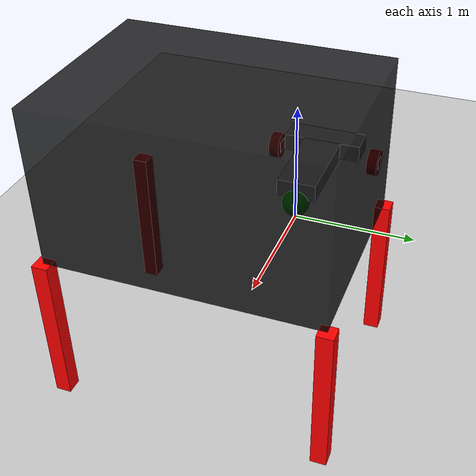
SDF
<?xml version="1.0" ?>
<sdf version="1.6">
  <world name="default">
    <shadows>false</shadows>
    <physics name="default_physics" type="ignored">
      <max_step_size>0.001</max_step_size>
      <real_time_factor>1.0</real_time_factor>
    </physics>
    <plugin
      filename="gz-sim-physics-system"
      name="gz::sim::systems::Physics">
    </plugin>
    <light type="directional" name="sun">
      <cast_shadows>false</cast_shadows>
      <pose>0 0 10 0 0 0</pose>
      <diffuse>1 1 1 1</diffuse>
      <specular>0.5 0.5 0.5 1</specular>
      <attenuation>
        <range>1000</range>
        <constant>0.9</constant>
        <linear>0.01</linear>
        <quadratic>0.001</quadratic>
      </attenuation>
      <direction>-0.5 0.1 -0.9</direction>
    </light>
    <gravity>0 0 -9.81</gravity>

    <plugin
      filename="gz-sim-sensors-system"
      name="gz::sim::systems::Sensors">
      <render_engine>ogre2</render_engine>
    </plugin>
    <plugin
      filename="gz-sim-scene-broadcaster-system"
      name="gz::sim::systems::SceneBroadcaster">
    </plugin>

    <gui fullscreen="0">

      <!-- 3D scene -->
      <plugin filename="MinimalScene" name="3D View">
        <gz-gui>
          <title>3D View</title>
          <property type="bool" key="showTitleBar">false</property>
          <property type="string" key="state">docked</property>
        </gz-gui>

        <engine>ogre2</engine>
        <scene>scene</scene>
        <ambient_light>0.4 0.4 0.4</ambient_light>
        <background_color>0.8 0.8 0.8</background_color>
        <camera_pose>-6 0 6 0 0.5 0</camera_pose>
      </plugin>

      <!-- Plugins that add functionality to the scene -->
      <plugin filename="EntityContextMenuPlugin" name="Entity context menu">
        <gz-gui>
          <property key="state" type="string">floating</property>
          <property key="width" type="double">5</property>
          <property key="height" type="double">5</property>
          <property key="showTitleBar" type="bool">false</property>
        </gz-gui>
      </plugin>
      <plugin filename="GzSceneManager" name="Scene Manager">
        <gz-gui>
          <property key="resizable" type="bool">false</property>
          <property key="width" type="double">5</property>
          <property key="height" type="double">5</property>
          <property key="state" type="string">floating</property>
          <property key="showTitleBar" type="bool">false</property>
        </gz-gui>
      </plugin>
      <plugin filename="InteractiveViewControl" name="Interactive view control">
        <gz-gui>
          <property key="resizable" type="bool">false</property>
          <property key="width" type="double">5</property>
          <property key="height" type="double">5</property>
          <property key="state" type="string">floating</property>
          <property key="showTitleBar" type="bool">false</property>
        </gz-gui>
      </plugin>
      <plugin filename="CameraTracking" name="Camera Tracking">
        <gz-gui>
          <property key="resizable" type="bool">false</property>
          <property key="width" type="double">5</property>
          <property key="height" type="double">5</property>
          <property key="state" type="string">floating</property>
          <property key="showTitleBar" type="bool">false</property>
        </gz-gui>
      </plugin>
      <!-- World control -->
      <plugin filename="WorldControl" name="World control">
        <gz-gui>
          <title>World control</title>
          <property type="bool" key="showTitleBar">false</property>
          <property type="bool" key="resizable">false</property>
          <property type="double" key="height">72</property>
          <property type="double" key="z">1</property>

          <property type="string" key="state">floating</property>
          <anchors target="3D View">
            <line own="left" target="left"/>
            <line own="bottom" target="bottom"/>
          </anchors>
        </gz-gui>

        <play_pause>true</play_pause>
        <step>true</step>
        <start_paused>true</start_paused>
        <use_event>true</use_event>

      </plugin>
      <!-- World statistics -->
      <plugin filename="WorldStats" name="World stats">
        <gz-gui>
          <title>World stats</title>
          <property type="bool" key="showTitleBar">false</property>
          <property type="bool" key="resizable">false</property>
          <property type="double" key="height">110</property>
          <property type="double" key="width">290</property>
          <property type="double" key="z">1</property>

          <property type="string" key="state">floating</property>
          <anchors target="3D View">
            <line own="right" target="right"/>
            <line own="bottom" target="bottom"/>
          </anchors>
        </gz-gui>

        <sim_time>true</sim_time>
        <real_time>true</real_time>
        <real_time_factor>true</real_time_factor>
        <iterations>true</iterations>
      </plugin>

      <!-- Inspector -->
      <plugin filename="ComponentInspector" name="Component inspector">
        <gz-gui>
          <property type="string" key="state">docked</property>
        </gz-gui>
      </plugin>

      <!-- Entity tree -->
      <plugin filename="EntityTree" name="Entity tree">
        <gz-gui>
          <property type="string" key="state">docked</property>
        </gz-gui>
      </plugin>
    </gui>

    <model name="ground_plane">
        <static>true</static>
        <link name="link">
            <collision name="collision">
            <geometry>
                <plane>
                <normal>0 0 1</normal>
                </plane>
            </geometry>
            <surface>
                <friction>
                <ode>
                    <mu>100</mu>
                    <mu2>50</mu2>
                </ode>
                </friction>
                <torsional>
                  <coefficient>0.0</coefficient>
                  <use_patch_radius>false</use_patch_radius>
                  <surface_radius>0.0</surface_radius>
                </torsional>
            </surface>
            </collision>
            <visual name="visual">
            <geometry>
                <plane>
                <normal>0 0 1</normal>
                <size>100 100</size>
                </plane>
            </geometry>
            <material>
                <ambient>0.8 0.8 0.8 1</ambient>
                <diffuse>0.8 0.8 0.8 1</diffuse>
                <specular>0.8 0.8 0.8 1</specular>
            </material>
            </visual>
        </link>
    </model>

    <!-- 장애물 - 박스 -->
    <model name='obstacle1'>
      <static>true</static>
      <pose>1.05 0.92 0.5 0 0 0</pose>
      <link name="box_link">
        <inertial>
          <inertia>
            <ixx>1</ixx>
            <ixy>0</ixy>
            <ixz>0</ixz>
            <iyy>1</iyy>
            <iyz>0</iyz>
            <izz>1</izz>
          </inertia>
          <mass>10</mass>
        </inertial>
        <collision name="box_collision">
          <geometry>
            <box>
              <size>0.1 0.1 1</size>
            </box>
          </geometry>
        </collision>
        <visual name='box_visual'>
          <geometry>
            <box>
              <size>0.1 0.1 1</size>
            </box>
          </geometry>
          <material>
            <ambient>1 0 0 1</ambient>
            <diffuse>1 0 0 1</diffuse>
            <specular>1 0 0 1</specular>
          </material>
        </visual>
      </link>
    </model>
    <model name='obstacle2'>
      <static>true</static>
      <pose>2.31 0.92 0.5 0 0 0</pose>
      <link name="box_link">
        <inertial>
          <inertia>
            <ixx>1</ixx>
            <ixy>0</ixy>
            <ixz>0</ixz>
            <iyy>1</iyy>
            <iyz>0</iyz>
            <izz>1</izz>
          </inertia>
          <mass>10</mass>
        </inertial>
        <collision name="box_collision">
          <geometry>
            <box>
              <size>0.1 0.1 1</size>
            </box>
          </geometry>
        </collision>
        <visual name='box_visual'>
          <geometry>
            <box>
              <size>0.1 0.1 1</size>
            </box>
          </geometry>
          <material>
            <ambient>1 0 0 1</ambient>
            <diffuse>1 0 0 1</diffuse>
            <specular>1 0 0 1</specular>
          </material>
        </visual>
      </link>
    </model>
    <model name='obstacle3'>
      <static>true</static>
      <pose>2.31 -0.79 0.5 0 0 0</pose>
      <link name="box_link">
        <inertial>
          <inertia>
            <ixx>1</ixx>
            <ixy>0</ixy>
            <ixz>0</ixz>
            <iyy>1</iyy>
            <iyz>0</iyz>
            <izz>1</izz>
          </inertia>
          <mass>10</mass>
        </inertial>
        <collision name="box_collision">
          <geometry>
            <box>
              <size>0.1 0.1 1</size>
            </box>
          </geometry>
        </collision>
        <visual name='box_visual'>
          <geometry>
            <box>
              <size>0.1 0.1 1</size>
            </box>
          </geometry>
          <material>
            <ambient>1 0 0 1</ambient>
            <diffuse>1 0 0 1</diffuse>
            <specular>1 0 0 1</specular>
          </material>
        </visual>
      </link>
    </model>
    <model name='obstacle4'>
      <static>true</static>
      <pose>1.05 -0.79 0.5 0 0 0</pose>
      <link name="box_link">
        <inertial>
          <inertia>
            <ixx>1</ixx>
            <ixy>0</ixy>
            <ixz>0</ixz>
            <iyy>1</iyy>
            <iyz>0</iyz>
            <izz>1</izz>
          </inertia>
          <mass>10</mass>
        </inertial>
        <collision name="box_collision">
          <geometry>
            <box>
              <size>0.1 0.1 1</size>
            </box>
          </geometry>
        </collision>
        <visual name='box_visual'>
          <geometry>
            <box>
              <size>0.1 0.1 1</size>
            </box>
          </geometry>
          <material>
            <ambient>1 0 0 1</ambient>
            <diffuse>1 0 0 1</diffuse>
            <specular>1 0 0 1</specular>
          </material>
        </visual>
      </link>
    </model>

    <model name='trailer'>
      <static>true</static>
      <pose>1.68 0.065 1.5 0 0 0</pose>
      <link name="box_link">
        <inertial>
          <inertia>
            <ixx>1</ixx>
            <ixy>0</ixy>
            <ixz>0</ixz>
            <iyy>1</iyy>
            <iyz>0</iyz>
            <izz>1</izz>
          </inertia>
          <mass>10</mass>
        </inertial>
        <visual name='box_visual'>
          <geometry>
            <box>
              <size>1.26 1.71 1</size>
            </box>
          </geometry>
          <material>
            <ambient>0 0 0 0.8</ambient>
            <diffuse>0 0 0 0.8</diffuse>
            <specular>1 0 0 1</specular>
          </material>
        </visual>
      </link>
    </model>

    <!-- 로봇 모델 -->
    <model name="robot">
      <static>false</static>
      <pose>0 0 0.25 0 0 0</pose>
      <link name="base_link">
        <pose>0.0 0.0 0.0 0 0 0</pose>
        <inertial>
          <inertia>
            <ixx>0.000166667</ixx>
            <iyy>0.000166667</iyy>
            <izz>0.000166667</izz>
          </inertia>
          <mass>0.01</mass>
        </inertial>
        <visual name="base_visual">
          <pose>0.0 0.0 0.0 0 0 0</pose>
          <geometry>
            <box>
              <size>0.01 0.01 0.01</size>
            </box>
          </geometry>
        </visual>
        <collision name="base_collision">
          <pose>0.0 0.0 0.0 0 0 0</pose>
          <geometry>
            <box>
              <size>0.01 0.01 0.01</size>
            </box>
          </geometry>
        </collision>
      </link>

      <link name="body1_link">
        <pose>-0.365 0.0 0.0 0 0 0</pose>
        <inertial>
          <inertia>
            <ixx>2.501</ixx>
            <ixy>0</ixy>
            <ixz>0</ixz>
            <iyy>2.501</iyy>
            <iyz>0</iyz>
            <izz>5</izz>
          </inertia>
          <mass>0.5</mass>
        </inertial>
        <visual name="base_visual">
          <pose>0.0 0.0 0.0 0 0 0</pose>
          <geometry>
            <box>
              <size>0.73 0.33 0.15</size>
            </box>
          </geometry>
        </visual>
        <collision name="base_collision">
          <pose>0.0 0.0 0.0 0 0 0</pose>
          <geometry>
            <box>
              <size>0.73 0.33 0.15</size>
            </box>
          </geometry>
        </collision>
      </link>

      <link name="body2_link">
        <pose>-0.845 0.0 0.0 0 0 0</pose>
        <inertial>
          <inertia>
            <ixx>2.501</ixx>
            <ixy>0</ixy>
            <ixz>0</ixz>
            <iyy>2.501</iyy>
            <iyz>0</iyz>
            <izz>5</izz>
          </inertia>
          <mass>0.5</mass>
        </inertial>
        <visual name="base_visual">
          <pose>0.0 0.0 0.0 0 0 0</pose>
          <geometry>
            <box>
              <size>0.23 0.68 0.15</size>
            </box>
          </geometry>
        </visual>
        <collision name="base_collision">
          <pose>0.0 0.0 0.0 0 0 0</pose>
          <geometry>
            <box>
              <size>0.23 0.68 0.15</size>
            </box>
          </geometry>
        </collision>
      </link>

      <link name='caster_wheel'>
        <pose>0 0 -0.115 0 0 0</pose>
        <inertial>
          <inertia>0.0067</inertia>
          <mass>0.2</mass>
        </inertial>
        <visual name='caster_visual'>
          <geometry>
            <sphere>
              <radius>0.115</radius>
            </sphere>
          </geometry>
          <material>
            <ambient>0.8 0.2 0.2 1</ambient>
            <diffuse>0 0.8 0 1</diffuse>
          </material>
        </visual>
        <collision name="caster_collision">
          <geometry>
            <sphere>
              <radius>0.115</radius>
            </sphere>
          </geometry>
        </collision>
      </link>

      <link name="left_arm">
        <pose>-0.845 0.455 -0.115 1.5707963 0 0</pose>
        <inertial>
          <inertia>
            <ixx>0.000166667</ixx>
            <iyy>0.000166667</iyy>
            <izz>0.000166667</izz>
          </inertia>
          <mass>0.01</mass>
        </inertial>
        <visual name="visual">
          <geometry>
            <box>
              <size>0.1 0.1 0.1</size>
            </box>
          </geometry>
          <material>
            <ambient>0.2 0.8 0.2 1</ambient>
            <diffuse>0.8 0 0 1</diffuse>
          </material>
        </visual>
      </link>

      <link name="left_wheel">
        <pose>-0.845 0.455 -0.115 1.5707963 0 0</pose>
        <inertial>
          <inertia>
            <ixx>0.032</ixx>
            <ixy>0</ixy>
            <ixz>0</ixz>
            <iyy>0.032</iyy>
            <iyz>0</iyz>
            <izz>0.00012</izz>
          </inertia>
          <mass>0.5</mass>
        </inertial>
        <visual name="visual">
          <geometry>
            <cylinder>
              <radius>0.115</radius>
              <length>0.09</length>
            </cylinder>
          </geometry>
          <material>
            <ambient>0.2 0.8 0.2 1</ambient>
            <diffuse>0.8 0 0 1</diffuse>
          </material>
        </visual>
        <collision name="collision">
          <geometry>
            <cylinder>
              <radius>0.115</radius>
              <length>0.09</length>
            </cylinder>
          </geometry>
        </collision>
      </link>

      <link name="right_arm">
        <pose>-0.845 -0.455 -0.115 1.5707963 0 0</pose>
        <inertial>
          <inertia>
            <ixx>0.000166667</ixx>
            <iyy>0.000166667</iyy>
            <izz>0.000166667</izz>
          </inertia>
          <mass>0.01</mass>
        </inertial>
        <visual name="visual">
          <geometry>
            <box>
              <size>0.1 0.1 0.1</size>
            </box>
          </geometry>
          <material>
            <ambient>0.2 0.8 0.2 1</ambient>
            <diffuse>0.8 0 0 1</diffuse>
          </material>
        </visual>
      </link>

      <link name="right_wheel">
        <pose>-0.845 -0.455 -0.115 1.5707963 0 0</pose>
        <inertial>
          <inertia>
            <ixx>0.032</ixx>
            <ixy>0</ixy>
            <ixz>0</ixz>
            <iyy>0.032</iyy>
            <iyz>0</iyz>
            <izz>0.00012</izz>
          </inertia>
          <mass>0.5</mass>
        </inertial>
        <visual name="visual">
          <geometry>
            <cylinder>
              <radius>0.115</radius>
              <length>0.09</length>
            </cylinder>
          </geometry>
          <material>
            <ambient>0.2 0.8 0.2 1</ambient>
            <diffuse>0.8 0 0 1</diffuse>
          </material>
        </visual>
        <collision name="collision">
          <geometry>
            <cylinder>
              <radius>0.115</radius>
              <length>0.09</length>
            </cylinder>
          </geometry>
        </collision>
      </link>

      <joint name="left_arm_joint" type="revolute">
        <pose>0 0 0 0 0 0</pose>
        <parent>body2_link</parent>
        <child>left_arm</child>
        <axis>
          <xyz>0 1 0</xyz>
        </axis>
        <!-- 여기는 arm이므로 리미트 걸어줘야 함. 확인할 것. 그리고 플러그인도 포지션 모드로 해줘야 함.  -->
      </joint>
      <joint name="left_wheel_joint" type="revolute">
        <pose>0 0 0 0 0 0</pose>
        <parent>left_arm</parent>
        <child>left_wheel</child>
        <axis>
          <xyz>0 0 -1</xyz>
          <limit>
            <effort>100</effort>
            <velocity>10.0</velocity>
          </limit>
        </axis>
      </joint>

      <joint name="right_arm_joint" type="revolute">
        <pose>0 0 0 0 0 0</pose>
        <parent>body2_link</parent>
        <child>right_arm</child>
        <axis>
          <xyz>0 1 0</xyz>
        </axis>
        <!-- 여기는 arm이므로 리미트 걸어줘야 함. 확인할 것. 그리고 플러그인도 포지션 모드로 해줘야 함.  -->
      </joint>
      <joint name="right_wheel_joint" type="revolute">
        <pose>0 0 0 0 0 0</pose>
        <parent>right_arm</parent>
        <child>right_wheel</child>
        <axis>
          <xyz>0 0 -1</xyz>
          <limit>
            <effort>100</effort>
            <velocity>10.0</velocity>
          </limit>
        </axis>
      </joint>

      <joint name="odom_joint" type="fixed">
        <pose>0 0 0 0 0 0</pose>
        <parent>base_link</parent>
        <child>body1_link</child>
      </joint>
      <joint name="body_joint" type="fixed">
        <pose>0 0 0 0 0 0</pose>
        <parent>body1_link</parent>
        <child>body2_link</child>
      </joint>

      <joint name="caster_wheel_joint" type="fixed">
        <pose>0 0 0 0 0 0</pose>
        <parent>base_link</parent>
        <child>caster_wheel</child>
      </joint>

      <!-- 각 조인트 gazebo 연동용 플러그인들 -->
      <plugin
        filename="gz-sim-joint-controller-system"
        name="gz::sim::systems::JointController">
        <joint_name>left_wheel_joint</joint_name>
        <initial_velocity>0.0</initial_velocity>
        <topic>left_wheel_vel</topic>
      </plugin>

      <plugin
        filename="gz-sim-joint-controller-system"
        name="gz::sim::systems::JointController">
        <joint_name>right_wheel_joint</joint_name>
        <initial_velocity>0.0</initial_velocity>
        <topic>right_wheel_vel</topic>
      </plugin>

      <plugin
        filename="gz-sim-joint-position-controller-system"
        name="gz::sim::systems::JointPositionController">
        <joint_name>right_arm_joint</joint_name>
        <topic>right_arm_angle</topic>
        <p_gain>2</p_gain>
        <i_gain>0.1</i_gain>
        <d_gain>0.2</d_gain>
        <i_max>1</i_max>
        <i_min>-1</i_min>
        <cmd_max>1000</cmd_max>
        <cmd_min>-1000</cmd_min>
      </plugin>

      <plugin
        filename="gz-sim-joint-position-controller-system"
        name="gz::sim::systems::JointPositionController">
        <joint_name>left_arm_joint</joint_name>
        <topic>left_arm_angle</topic>
        <p_gain>2</p_gain>
        <i_gain>0.1</i_gain>
        <d_gain>0.2</d_gain>
        <i_max>1</i_max>
        <i_min>-1</i_min>
        <cmd_max>1000</cmd_max>
        <cmd_min>-1000</cmd_min>
      </plugin>

      <plugin name="gz::sim::systems::VelocityControl" filename="gz-sim-velocity-control-system">
            <topic>body_vel</topic>
      </plugin>
    </model>
  </world>
</sdf>
